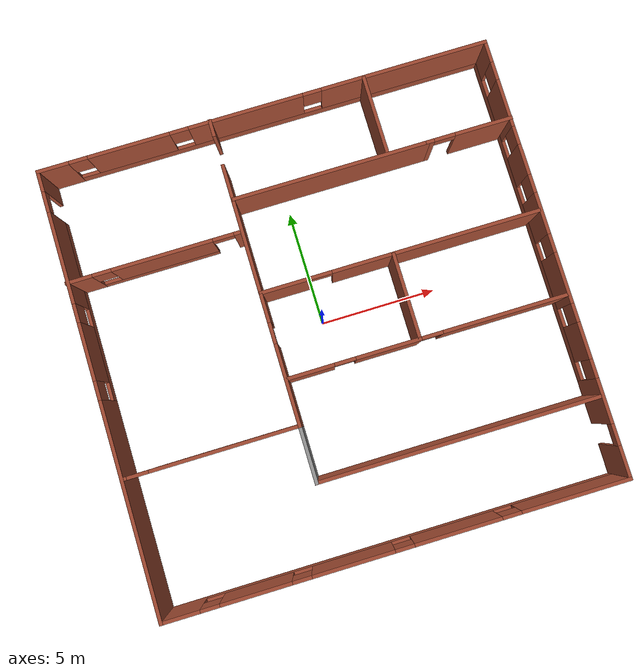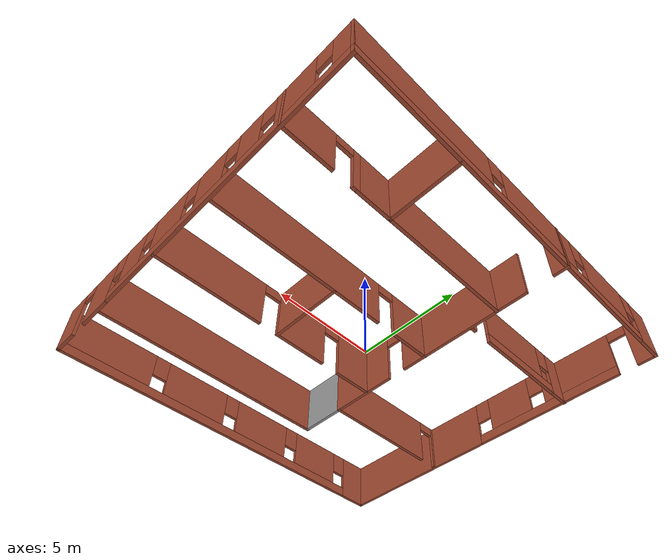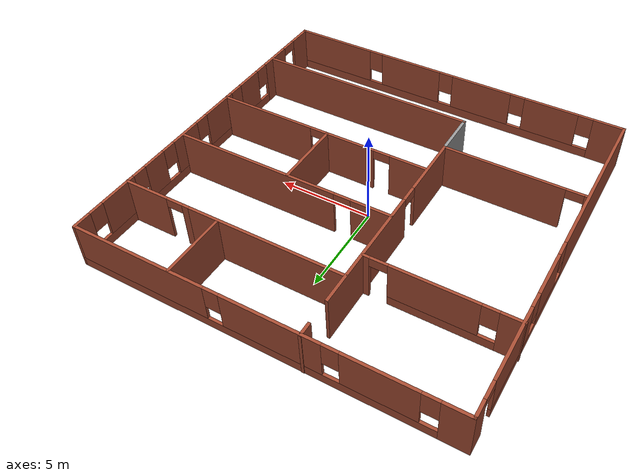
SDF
<?xml version='1.0'?>
<sdf version='1.7'>
  <model name='Robo_house'>
    <pose>0.166 -0.2695 0 0 -0 0</pose>
    <link name='Wall_15'>
      <pose>0.017 -9.4375 0 0 -0 0</pose>
      <visual name='Wall_15_Visual_0'>
        <pose>-8.91507 0 1.25 0 -0 0</pose>
        <geometry>
          <box>
            <size>1.66987 0.15 2.5</size>
          </box>
        </geometry>
        <material>
          <script>
            <uri>file://media/materials/scripts/gazebo.material</uri>
            <name>Gazebo/Bricks</name>
          </script>
          <ambient>1 1 1 1</ambient>
        </material>
        <meta>
          <layer>0</layer>
        </meta>
      </visual>
      <collision name='Wall_15_Collision_0'>
        <geometry>
          <box>
            <size>1.66987 0.15 2.5</size>
          </box>
        </geometry>
        <pose>-8.91507 0 1.25 0 -0 0</pose>
      </collision>
      <visual name='Wall_15_Visual_1'>
        <pose>0.834934 0 0.25 0 -0 0</pose>
        <geometry>
          <box>
            <size>17.8301 0.15 0.5</size>
          </box>
        </geometry>
        <material>
          <script>
            <uri>file://media/materials/scripts/gazebo.material</uri>
            <name>Gazebo/Bricks</name>
          </script>
          <ambient>1 1 1 1</ambient>
        </material>
        <meta>
          <layer>0</layer>
        </meta>
      </visual>
      <collision name='Wall_15_Collision_1'>
        <geometry>
          <box>
            <size>17.8301 0.15 0.5</size>
          </box>
        </geometry>
        <pose>0.834934 0 0.25 0 -0 0</pose>
      </collision>
      <visual name='Wall_15_Visual_2'>
        <pose>-5.79807 0 1.5 0 -0 0</pose>
        <geometry>
          <box>
            <size>2.96413 0.15 2</size>
          </box>
        </geometry>
        <material>
          <script>
            <uri>file://media/materials/scripts/gazebo.material</uri>
            <name>Gazebo/Bricks</name>
          </script>
          <ambient>1 1 1 1</ambient>
        </material>
        <meta>
          <layer>0</layer>
        </meta>
      </visual>
      <collision name='Wall_15_Collision_2'>
        <geometry>
          <box>
            <size>2.96413 0.15 2</size>
          </box>
        </geometry>
        <pose>-5.79807 0 1.5 0 -0 0</pose>
      </collision>
      <visual name='Wall_15_Visual_3'>
        <pose>-1.80528 0 1.5 0 -0 0</pose>
        <geometry>
          <box>
            <size>3.42145 0.15 2</size>
          </box>
        </geometry>
        <material>
          <script>
            <uri>file://media/materials/scripts/gazebo.material</uri>
            <name>Gazebo/Bricks</name>
          </script>
          <ambient>1 1 1 1</ambient>
        </material>
        <meta>
          <layer>0</layer>
        </meta>
      </visual>
      <collision name='Wall_15_Collision_3'>
        <geometry>
          <box>
            <size>3.42145 0.15 2</size>
          </box>
        </geometry>
        <pose>-1.80528 0 1.5 0 -0 0</pose>
      </collision>
      <visual name='Wall_15_Visual_4'>
        <pose>2.52171 0 1.5 0 -0 0</pose>
        <geometry>
          <box>
            <size>3.63252 0.15 2</size>
          </box>
        </geometry>
        <material>
          <script>
            <uri>file://media/materials/scripts/gazebo.material</uri>
            <name>Gazebo/Bricks</name>
          </script>
          <ambient>1 1 1 1</ambient>
        </material>
        <meta>
          <layer>0</layer>
        </meta>
      </visual>
      <collision name='Wall_15_Collision_4'>
        <geometry>
          <box>
            <size>3.63252 0.15 2</size>
          </box>
        </geometry>
        <pose>2.52171 0 1.5 0 -0 0</pose>
      </collision>
      <visual name='Wall_15_Visual_5'>
        <pose>7.44398 0 1.5 0 -0 0</pose>
        <geometry>
          <box>
            <size>4.61203 0.15 2</size>
          </box>
        </geometry>
        <material>
          <script>
            <uri>file://media/materials/scripts/gazebo.material</uri>
            <name>Gazebo/Bricks</name>
          </script>
          <ambient>1 1 1 1</ambient>
        </material>
        <meta>
          <layer>0</layer>
        </meta>
      </visual>
      <collision name='Wall_15_Collision_5'>
        <geometry>
          <box>
            <size>4.61203 0.15 2</size>
          </box>
        </geometry>
        <pose>7.44398 0 1.5 0 -0 0</pose>
      </collision>
      <visual name='Wall_15_Visual_6'>
        <pose>-7.68013 0 1.9 0 -0 0</pose>
        <geometry>
          <box>
            <size>0.8 0.15 1.2</size>
          </box>
        </geometry>
        <material>
          <script>
            <uri>file://media/materials/scripts/gazebo.material</uri>
            <name>Gazebo/Bricks</name>
          </script>
          <ambient>1 1 1 1</ambient>
        </material>
        <meta>
          <layer>0</layer>
        </meta>
      </visual>
      <collision name='Wall_15_Collision_6'>
        <geometry>
          <box>
            <size>0.8 0.15 1.2</size>
          </box>
        </geometry>
        <pose>-7.68013 0 1.9 0 -0 0</pose>
      </collision>
      <visual name='Wall_15_Visual_7'>
        <pose>-3.91601 0 1.9 0 -0 0</pose>
        <geometry>
          <box>
            <size>0.8 0.15 1.2</size>
          </box>
        </geometry>
        <material>
          <script>
            <uri>file://media/materials/scripts/gazebo.material</uri>
            <name>Gazebo/Bricks</name>
          </script>
          <ambient>1 1 1 1</ambient>
        </material>
        <meta>
          <layer>0</layer>
        </meta>
      </visual>
      <collision name='Wall_15_Collision_7'>
        <geometry>
          <box>
            <size>0.8 0.15 1.2</size>
          </box>
        </geometry>
        <pose>-3.91601 0 1.9 0 -0 0</pose>
      </collision>
      <visual name='Wall_15_Visual_8'>
        <pose>0.305447 0 1.9 0 -0 0</pose>
        <geometry>
          <box>
            <size>0.8 0.15 1.2</size>
          </box>
        </geometry>
        <material>
          <script>
            <uri>file://media/materials/scripts/gazebo.material</uri>
            <name>Gazebo/Bricks</name>
          </script>
          <ambient>1 1 1 1</ambient>
        </material>
        <meta>
          <layer>0</layer>
        </meta>
      </visual>
      <collision name='Wall_15_Collision_8'>
        <geometry>
          <box>
            <size>0.8 0.15 1.2</size>
          </box>
        </geometry>
        <pose>0.305447 0 1.9 0 -0 0</pose>
      </collision>
      <visual name='Wall_15_Visual_9'>
        <pose>4.73797 0 1.9 0 -0 0</pose>
        <geometry>
          <box>
            <size>0.8 0.15 1.2</size>
          </box>
        </geometry>
        <material>
          <script>
            <uri>file://media/materials/scripts/gazebo.material</uri>
            <name>Gazebo/Bricks</name>
          </script>
          <ambient>1 1 1 1</ambient>
        </material>
        <meta>
          <layer>0</layer>
        </meta>
      </visual>
      <collision name='Wall_15_Collision_9'>
        <geometry>
          <box>
            <size>0.8 0.15 1.2</size>
          </box>
        </geometry>
        <pose>4.73797 0 1.9 0 -0 0</pose>
      </collision>
    </link>
    <link name='Wall_16'>
      <pose>9.692 -0.0125 0 0 -0 1.5708</pose>
      <visual name='Wall_16_Visual_0'>
        <pose>-8.77922 0 1.25 0 -0 0</pose>
        <geometry>
          <box>
            <size>1.44155 0.15 2.5</size>
          </box>
        </geometry>
        <material>
          <script>
            <uri>file://media/materials/scripts/gazebo.material</uri>
            <name>Gazebo/Bricks</name>
          </script>
          <ambient>1 1 1 1</ambient>
        </material>
        <meta>
          <layer>0</layer>
        </meta>
      </visual>
      <collision name='Wall_16_Collision_0'>
        <geometry>
          <box>
            <size>1.44155 0.15 2.5</size>
          </box>
        </geometry>
        <pose>-8.77922 0 1.25 0 -0 0</pose>
      </collision>
      <visual name='Wall_16_Visual_1'>
        <pose>-6.20712 0 1.25 0 -0 0</pose>
        <geometry>
          <box>
            <size>1.90264 0.15 2.5</size>
          </box>
        </geometry>
        <material>
          <script>
            <uri>file://media/materials/scripts/gazebo.material</uri>
            <name>Gazebo/Bricks</name>
          </script>
          <ambient>1 1 1 1</ambient>
        </material>
        <meta>
          <layer>0</layer>
        </meta>
      </visual>
      <collision name='Wall_16_Collision_1'>
        <geometry>
          <box>
            <size>1.90264 0.15 2.5</size>
          </box>
        </geometry>
        <pose>-6.20712 0 1.25 0 -0 0</pose>
      </collision>
      <visual name='Wall_16_Visual_2'>
        <pose>2.1221 0 0.25 0 -0 0</pose>
        <geometry>
          <box>
            <size>14.7558 0.15 0.5</size>
          </box>
        </geometry>
        <material>
          <script>
            <uri>file://media/materials/scripts/gazebo.material</uri>
            <name>Gazebo/Bricks</name>
          </script>
          <ambient>1 1 1 1</ambient>
        </material>
        <meta>
          <layer>0</layer>
        </meta>
      </visual>
      <collision name='Wall_16_Collision_2'>
        <geometry>
          <box>
            <size>14.7558 0.15 0.5</size>
          </box>
        </geometry>
        <pose>2.1221 0 0.25 0 -0 0</pose>
      </collision>
      <visual name='Wall_16_Visual_3'>
        <pose>-3.67427 0 1.5 0 -0 0</pose>
        <geometry>
          <box>
            <size>1.56306 0.15 2</size>
          </box>
        </geometry>
        <material>
          <script>
            <uri>file://media/materials/scripts/gazebo.material</uri>
            <name>Gazebo/Bricks</name>
          </script>
          <ambient>1 1 1 1</ambient>
        </material>
        <meta>
          <layer>0</layer>
        </meta>
      </visual>
      <collision name='Wall_16_Collision_3'>
        <geometry>
          <box>
            <size>1.56306 0.15 2</size>
          </box>
        </geometry>
        <pose>-3.67427 0 1.5 0 -0 0</pose>
      </collision>
      <visual name='Wall_16_Visual_4'>
        <pose>-1.00069 0 1.5 0 -0 0</pose>
        <geometry>
          <box>
            <size>2.18411 0.15 2</size>
          </box>
        </geometry>
        <material>
          <script>
            <uri>file://media/materials/scripts/gazebo.material</uri>
            <name>Gazebo/Bricks</name>
          </script>
          <ambient>1 1 1 1</ambient>
        </material>
        <meta>
          <layer>0</layer>
        </meta>
      </visual>
      <collision name='Wall_16_Collision_4'>
        <geometry>
          <box>
            <size>2.18411 0.15 2</size>
          </box>
        </geometry>
        <pose>-1.00069 0 1.5 0 -0 0</pose>
      </collision>
      <visual name='Wall_16_Visual_5'>
        <pose>1.79027 0 1.5 0 -0 0</pose>
        <geometry>
          <box>
            <size>1.79781 0.15 2</size>
          </box>
        </geometry>
        <material>
          <script>
            <uri>file://media/materials/scripts/gazebo.material</uri>
            <name>Gazebo/Bricks</name>
          </script>
          <ambient>1 1 1 1</ambient>
        </material>
        <meta>
          <layer>0</layer>
        </meta>
      </visual>
      <collision name='Wall_16_Collision_5'>
        <geometry>
          <box>
            <size>1.79781 0.15 2</size>
          </box>
        </geometry>
        <pose>1.79027 0 1.5 0 -0 0</pose>
      </collision>
      <visual name='Wall_16_Visual_6'>
        <pose>4.15524 0 1.5 0 -0 0</pose>
        <geometry>
          <box>
            <size>1.33214 0.15 2</size>
          </box>
        </geometry>
        <material>
          <script>
            <uri>file://media/materials/scripts/gazebo.material</uri>
            <name>Gazebo/Bricks</name>
          </script>
          <ambient>1 1 1 1</ambient>
        </material>
        <meta>
          <layer>0</layer>
        </meta>
      </visual>
      <collision name='Wall_16_Collision_6'>
        <geometry>
          <box>
            <size>1.33214 0.15 2</size>
          </box>
        </geometry>
        <pose>4.15524 0 1.5 0 -0 0</pose>
      </collision>
      <visual name='Wall_16_Visual_7'>
        <pose>6.66355 0 1.5 0 -0 0</pose>
        <geometry>
          <box>
            <size>2.08446 0.15 2</size>
          </box>
        </geometry>
        <material>
          <script>
            <uri>file://media/materials/scripts/gazebo.material</uri>
            <name>Gazebo/Bricks</name>
          </script>
          <ambient>1 1 1 1</ambient>
        </material>
        <meta>
          <layer>0</layer>
        </meta>
      </visual>
      <collision name='Wall_16_Collision_7'>
        <geometry>
          <box>
            <size>2.08446 0.15 2</size>
          </box>
        </geometry>
        <pose>6.66355 0 1.5 0 -0 0</pose>
      </collision>
      <visual name='Wall_16_Visual_8'>
        <pose>9.00289 0 1.5 0 -0 0</pose>
        <geometry>
          <box>
            <size>0.99422 0.15 2</size>
          </box>
        </geometry>
        <material>
          <script>
            <uri>file://media/materials/scripts/gazebo.material</uri>
            <name>Gazebo/Bricks</name>
          </script>
          <ambient>1 1 1 1</ambient>
        </material>
        <meta>
          <layer>0</layer>
        </meta>
      </visual>
      <collision name='Wall_16_Collision_8'>
        <geometry>
          <box>
            <size>0.99422 0.15 2</size>
          </box>
        </geometry>
        <pose>9.00289 0 1.5 0 -0 0</pose>
      </collision>
      <visual name='Wall_16_Visual_9'>
        <pose>-4.8558 0 1.9 0 -0 0</pose>
        <geometry>
          <box>
            <size>0.8 0.15 1.2</size>
          </box>
        </geometry>
        <material>
          <script>
            <uri>file://media/materials/scripts/gazebo.material</uri>
            <name>Gazebo/Bricks</name>
          </script>
          <ambient>1 1 1 1</ambient>
        </material>
        <meta>
          <layer>0</layer>
        </meta>
      </visual>
      <collision name='Wall_16_Collision_9'>
        <geometry>
          <box>
            <size>0.8 0.15 1.2</size>
          </box>
        </geometry>
        <pose>-4.8558 0 1.9 0 -0 0</pose>
      </collision>
      <visual name='Wall_16_Visual_10'>
        <pose>-2.49274 0 1.9 0 -0 0</pose>
        <geometry>
          <box>
            <size>0.8 0.15 1.2</size>
          </box>
        </geometry>
        <material>
          <script>
            <uri>file://media/materials/scripts/gazebo.material</uri>
            <name>Gazebo/Bricks</name>
          </script>
          <ambient>1 1 1 1</ambient>
        </material>
        <meta>
          <layer>0</layer>
        </meta>
      </visual>
      <collision name='Wall_16_Collision_10'>
        <geometry>
          <box>
            <size>0.8 0.15 1.2</size>
          </box>
        </geometry>
        <pose>-2.49274 0 1.9 0 -0 0</pose>
      </collision>
      <visual name='Wall_16_Visual_11'>
        <pose>0.491371 0 1.9 0 -0 0</pose>
        <geometry>
          <box>
            <size>0.8 0.15 1.2</size>
          </box>
        </geometry>
        <material>
          <script>
            <uri>file://media/materials/scripts/gazebo.material</uri>
            <name>Gazebo/Bricks</name>
          </script>
          <ambient>1 1 1 1</ambient>
        </material>
        <meta>
          <layer>0</layer>
        </meta>
      </visual>
      <collision name='Wall_16_Collision_11'>
        <geometry>
          <box>
            <size>0.8 0.15 1.2</size>
          </box>
        </geometry>
        <pose>0.491371 0 1.9 0 -0 0</pose>
      </collision>
      <visual name='Wall_16_Visual_12'>
        <pose>3.08918 0 1.9 0 -0 0</pose>
        <geometry>
          <box>
            <size>0.8 0.15 1.2</size>
          </box>
        </geometry>
        <material>
          <script>
            <uri>file://media/materials/scripts/gazebo.material</uri>
            <name>Gazebo/Bricks</name>
          </script>
          <ambient>1 1 1 1</ambient>
        </material>
        <meta>
          <layer>0</layer>
        </meta>
      </visual>
      <collision name='Wall_16_Collision_12'>
        <geometry>
          <box>
            <size>0.8 0.15 1.2</size>
          </box>
        </geometry>
        <pose>3.08918 0 1.9 0 -0 0</pose>
      </collision>
      <visual name='Wall_16_Visual_13'>
        <pose>5.22131 0 1.9 0 -0 0</pose>
        <geometry>
          <box>
            <size>0.8 0.15 1.2</size>
          </box>
        </geometry>
        <material>
          <script>
            <uri>file://media/materials/scripts/gazebo.material</uri>
            <name>Gazebo/Bricks</name>
          </script>
          <ambient>1 1 1 1</ambient>
        </material>
        <meta>
          <layer>0</layer>
        </meta>
      </visual>
      <collision name='Wall_16_Collision_13'>
        <geometry>
          <box>
            <size>0.8 0.15 1.2</size>
          </box>
        </geometry>
        <pose>5.22131 0 1.9 0 -0 0</pose>
      </collision>
      <visual name='Wall_16_Visual_14'>
        <pose>8.10578 0 1.9 0 -0 0</pose>
        <geometry>
          <box>
            <size>0.8 0.15 1.2</size>
          </box>
        </geometry>
        <material>
          <script>
            <uri>file://media/materials/scripts/gazebo.material</uri>
            <name>Gazebo/Bricks</name>
          </script>
          <ambient>1 1 1 1</ambient>
        </material>
        <meta>
          <layer>0</layer>
        </meta>
      </visual>
      <collision name='Wall_16_Collision_14'>
        <geometry>
          <box>
            <size>0.8 0.15 1.2</size>
          </box>
        </geometry>
        <pose>8.10578 0 1.9 0 -0 0</pose>
      </collision>
      <visual name='Wall_16_Visual_15'>
        <pose>-7.60845 0 2.25 0 -0 0</pose>
        <geometry>
          <box>
            <size>0.9 0.15 0.5</size>
          </box>
        </geometry>
        <material>
          <script>
            <uri>file://media/materials/scripts/gazebo.material</uri>
            <name>Gazebo/Bricks</name>
          </script>
          <ambient>1 1 1 1</ambient>
        </material>
        <meta>
          <layer>0</layer>
        </meta>
      </visual>
      <collision name='Wall_16_Collision_15'>
        <geometry>
          <box>
            <size>0.9 0.15 0.5</size>
          </box>
        </geometry>
        <pose>-7.60845 0 2.25 0 -0 0</pose>
      </collision>
    </link>
    <link name='Wall_20'>
      <pose>-9.658 -0.0125 0 0 -0 1.5708</pose>
      <visual name='Wall_20_Visual_0'>
        <pose>-4.92846 0 1.25 0 -0 0</pose>
        <geometry>
          <box>
            <size>9.14308 0.15 2.5</size>
          </box>
        </geometry>
        <material>
          <script>
            <uri>file://media/materials/scripts/gazebo.material</uri>
            <name>Gazebo/Bricks</name>
          </script>
          <ambient>1 1 1 1</ambient>
        </material>
        <meta>
          <layer>0</layer>
        </meta>
      </visual>
      <collision name='Wall_20_Collision_0'>
        <geometry>
          <box>
            <size>9.14308 0.15 2.5</size>
          </box>
        </geometry>
        <pose>-4.92846 0 1.25 0 -0 0</pose>
      </collision>
      <visual name='Wall_20_Visual_1'>
        <pose>9.02608 0 1.25 0 -0 0</pose>
        <geometry>
          <box>
            <size>0.947833 0.15 2.5</size>
          </box>
        </geometry>
        <material>
          <script>
            <uri>file://media/materials/scripts/gazebo.material</uri>
            <name>Gazebo/Bricks</name>
          </script>
          <ambient>1 1 1 1</ambient>
        </material>
        <meta>
          <layer>0</layer>
        </meta>
      </visual>
      <collision name='Wall_20_Collision_1'>
        <geometry>
          <box>
            <size>0.947833 0.15 2.5</size>
          </box>
        </geometry>
        <pose>9.02608 0 1.25 0 -0 0</pose>
      </collision>
      <visual name='Wall_20_Visual_2'>
        <pose>3.64762 0 0.25 0 -0 0</pose>
        <geometry>
          <box>
            <size>8.00909 0.15 0.5</size>
          </box>
        </geometry>
        <material>
          <script>
            <uri>file://media/materials/scripts/gazebo.material</uri>
            <name>Gazebo/Bricks</name>
          </script>
          <ambient>1 1 1 1</ambient>
        </material>
        <meta>
          <layer>0</layer>
        </meta>
      </visual>
      <collision name='Wall_20_Collision_2'>
        <geometry>
          <box>
            <size>8.00909 0.15 0.5</size>
          </box>
        </geometry>
        <pose>3.64762 0 0.25 0 -0 0</pose>
      </collision>
      <visual name='Wall_20_Visual_3'>
        <pose>1.67438 0 1.5 0 -0 0</pose>
        <geometry>
          <box>
            <size>2.46259 0.15 2</size>
          </box>
        </geometry>
        <material>
          <script>
            <uri>file://media/materials/scripts/gazebo.material</uri>
            <name>Gazebo/Bricks</name>
          </script>
          <ambient>1 1 1 1</ambient>
        </material>
        <meta>
          <layer>0</layer>
        </meta>
      </visual>
      <collision name='Wall_20_Collision_3'>
        <geometry>
          <box>
            <size>2.46259 0.15 2</size>
          </box>
        </geometry>
        <pose>1.67438 0 1.5 0 -0 0</pose>
      </collision>
      <visual name='Wall_20_Visual_4'>
        <pose>5.67892 0 1.5 0 -0 0</pose>
        <geometry>
          <box>
            <size>3.9465 0.15 2</size>
          </box>
        </geometry>
        <material>
          <script>
            <uri>file://media/materials/scripts/gazebo.material</uri>
            <name>Gazebo/Bricks</name>
          </script>
          <ambient>1 1 1 1</ambient>
        </material>
        <meta>
          <layer>0</layer>
        </meta>
      </visual>
      <collision name='Wall_20_Collision_4'>
        <geometry>
          <box>
            <size>3.9465 0.15 2</size>
          </box>
        </geometry>
        <pose>5.67892 0 1.5 0 -0 0</pose>
      </collision>
      <visual name='Wall_20_Visual_5'>
        <pose>0.04308 0 1.9 0 -0 0</pose>
        <geometry>
          <box>
            <size>0.8 0.15 1.2</size>
          </box>
        </geometry>
        <material>
          <script>
            <uri>file://media/materials/scripts/gazebo.material</uri>
            <name>Gazebo/Bricks</name>
          </script>
          <ambient>1 1 1 1</ambient>
        </material>
        <meta>
          <layer>0</layer>
        </meta>
      </visual>
      <collision name='Wall_20_Collision_5'>
        <geometry>
          <box>
            <size>0.8 0.15 1.2</size>
          </box>
        </geometry>
        <pose>0.04308 0 1.9 0 -0 0</pose>
      </collision>
      <visual name='Wall_20_Visual_6'>
        <pose>3.30567 0 1.9 0 -0 0</pose>
        <geometry>
          <box>
            <size>0.8 0.15 1.2</size>
          </box>
        </geometry>
        <material>
          <script>
            <uri>file://media/materials/scripts/gazebo.material</uri>
            <name>Gazebo/Bricks</name>
          </script>
          <ambient>1 1 1 1</ambient>
        </material>
        <meta>
          <layer>0</layer>
        </meta>
      </visual>
      <collision name='Wall_20_Collision_6'>
        <geometry>
          <box>
            <size>0.8 0.15 1.2</size>
          </box>
        </geometry>
        <pose>3.30567 0 1.9 0 -0 0</pose>
      </collision>
      <visual name='Wall_20_Visual_7'>
        <pose>8.10217 0 2.25 0 -0 0</pose>
        <geometry>
          <box>
            <size>0.9 0.15 0.5</size>
          </box>
        </geometry>
        <material>
          <script>
            <uri>file://media/materials/scripts/gazebo.material</uri>
            <name>Gazebo/Bricks</name>
          </script>
          <ambient>1 1 1 1</ambient>
        </material>
        <meta>
          <layer>0</layer>
        </meta>
      </visual>
      <collision name='Wall_20_Collision_7'>
        <geometry>
          <box>
            <size>0.9 0.15 0.5</size>
          </box>
        </geometry>
        <pose>8.10217 0 2.25 0 -0 0</pose>
      </collision>
    </link>
    <link name='Wall_21'>
      <pose>0.017 9.4125 0 0 -0 0</pose>
      <visual name='Wall_21_Visual_0'>
        <pose>-9.05411 0 1.25 0 -0 0</pose>
        <geometry>
          <box>
            <size>1.39177 0.15 2.5</size>
          </box>
        </geometry>
        <material>
          <script>
            <uri>file://media/materials/scripts/gazebo.material</uri>
            <name>Gazebo/Bricks</name>
          </script>
          <ambient>1 1 1 1</ambient>
        </material>
        <meta>
          <layer>0</layer>
        </meta>
      </visual>
      <collision name='Wall_21_Collision_0'>
        <geometry>
          <box>
            <size>1.39177 0.15 2.5</size>
          </box>
        </geometry>
        <pose>-9.05411 0 1.25 0 -0 0</pose>
      </collision>
      <visual name='Wall_21_Visual_1'>
        <pose>0.695886 0 0.25 0 -0 0</pose>
        <geometry>
          <box>
            <size>18.1082 0.15 0.5</size>
          </box>
        </geometry>
        <material>
          <script>
            <uri>file://media/materials/scripts/gazebo.material</uri>
            <name>Gazebo/Bricks</name>
          </script>
          <ambient>1 1 1 1</ambient>
        </material>
        <meta>
          <layer>0</layer>
        </meta>
      </visual>
      <collision name='Wall_21_Collision_1'>
        <geometry>
          <box>
            <size>18.1082 0.15 0.5</size>
          </box>
        </geometry>
        <pose>0.695886 0 0.25 0 -0 0</pose>
      </collision>
      <visual name='Wall_21_Visual_2'>
        <pose>-5.79711 0 1.5 0 -0 0</pose>
        <geometry>
          <box>
            <size>3.52224 0.15 2</size>
          </box>
        </geometry>
        <material>
          <script>
            <uri>file://media/materials/scripts/gazebo.material</uri>
            <name>Gazebo/Bricks</name>
          </script>
          <ambient>1 1 1 1</ambient>
        </material>
        <meta>
          <layer>0</layer>
        </meta>
      </visual>
      <collision name='Wall_21_Collision_2'>
        <geometry>
          <box>
            <size>3.52224 0.15 2</size>
          </box>
        </geometry>
        <pose>-5.79711 0 1.5 0 -0 0</pose>
      </collision>
      <visual name='Wall_21_Visual_3'>
        <pose>-0.763639 0 1.5 0 -0 0</pose>
        <geometry>
          <box>
            <size>4.94469 0.15 2</size>
          </box>
        </geometry>
        <material>
          <script>
            <uri>file://media/materials/scripts/gazebo.material</uri>
            <name>Gazebo/Bricks</name>
          </script>
          <ambient>1 1 1 1</ambient>
        </material>
        <meta>
          <layer>0</layer>
        </meta>
      </visual>
      <collision name='Wall_21_Collision_3'>
        <geometry>
          <box>
            <size>4.94469 0.15 2</size>
          </box>
        </geometry>
        <pose>-0.763639 0 1.5 0 -0 0</pose>
      </collision>
      <visual name='Wall_21_Visual_4'>
        <pose>6.12935 0 1.5 0 -0 0</pose>
        <geometry>
          <box>
            <size>7.24129 0.15 2</size>
          </box>
        </geometry>
        <material>
          <script>
            <uri>file://media/materials/scripts/gazebo.material</uri>
            <name>Gazebo/Bricks</name>
          </script>
          <ambient>1 1 1 1</ambient>
        </material>
        <meta>
          <layer>0</layer>
        </meta>
      </visual>
      <collision name='Wall_21_Collision_4'>
        <geometry>
          <box>
            <size>7.24129 0.15 2</size>
          </box>
        </geometry>
        <pose>6.12935 0 1.5 0 -0 0</pose>
      </collision>
      <visual name='Wall_21_Visual_5'>
        <pose>-7.95823 0 1.9 0 -0 0</pose>
        <geometry>
          <box>
            <size>0.8 0.15 1.2</size>
          </box>
        </geometry>
        <material>
          <script>
            <uri>file://media/materials/scripts/gazebo.material</uri>
            <name>Gazebo/Bricks</name>
          </script>
          <ambient>1 1 1 1</ambient>
        </material>
        <meta>
          <layer>0</layer>
        </meta>
      </visual>
      <collision name='Wall_21_Collision_5'>
        <geometry>
          <box>
            <size>0.8 0.15 1.2</size>
          </box>
        </geometry>
        <pose>-7.95823 0 1.9 0 -0 0</pose>
      </collision>
      <visual name='Wall_21_Visual_6'>
        <pose>-3.63598 0 1.9 0 -0 0</pose>
        <geometry>
          <box>
            <size>0.8 0.15 1.2</size>
          </box>
        </geometry>
        <material>
          <script>
            <uri>file://media/materials/scripts/gazebo.material</uri>
            <name>Gazebo/Bricks</name>
          </script>
          <ambient>1 1 1 1</ambient>
        </material>
        <meta>
          <layer>0</layer>
        </meta>
      </visual>
      <collision name='Wall_21_Collision_6'>
        <geometry>
          <box>
            <size>0.8 0.15 1.2</size>
          </box>
        </geometry>
        <pose>-3.63598 0 1.9 0 -0 0</pose>
      </collision>
      <visual name='Wall_21_Visual_7'>
        <pose>2.10871 0 1.9 0 -0 0</pose>
        <geometry>
          <box>
            <size>0.8 0.15 1.2</size>
          </box>
        </geometry>
        <material>
          <script>
            <uri>file://media/materials/scripts/gazebo.material</uri>
            <name>Gazebo/Bricks</name>
          </script>
          <ambient>1 1 1 1</ambient>
        </material>
        <meta>
          <layer>0</layer>
        </meta>
      </visual>
      <collision name='Wall_21_Collision_7'>
        <geometry>
          <box>
            <size>0.8 0.15 1.2</size>
          </box>
        </geometry>
        <pose>2.10871 0 1.9 0 -0 0</pose>
      </collision>
    </link>
    <link name='Wall_23'>
      <pose>-5.961 -3.6535 0 0 -0 0</pose>
      <visual name='Wall_23_Visual_0'>
        <pose>-3.62205 0 1.25 0 -0 0</pose>
        <geometry>
          <box>
            <size>0.255896 0.15 2.5</size>
          </box>
        </geometry>
        <material>
          <script>
            <uri>file://media/materials/scripts/gazebo.material</uri>
            <name>Gazebo/Bricks</name>
          </script>
          <ambient>1 1 1 1</ambient>
        </material>
        <meta>
          <layer>0</layer>
        </meta>
      </visual>
      <collision name='Wall_23_Collision_0'>
        <geometry>
          <box>
            <size>0.255896 0.15 2.5</size>
          </box>
        </geometry>
        <pose>-3.62205 0 1.25 0 -0 0</pose>
      </collision>
      <visual name='Wall_23_Visual_1'>
        <pose>0.577948 0 1.25 0 -0 0</pose>
        <geometry>
          <box>
            <size>6.3441 0.15 2.5</size>
          </box>
        </geometry>
        <material>
          <script>
            <uri>file://media/materials/scripts/gazebo.material</uri>
            <name>Gazebo/Bricks</name>
          </script>
          <ambient>1 1 1 1</ambient>
        </material>
        <meta>
          <layer>0</layer>
        </meta>
      </visual>
      <collision name='Wall_23_Collision_1'>
        <geometry>
          <box>
            <size>6.3441 0.15 2.5</size>
          </box>
        </geometry>
        <pose>0.577948 0 1.25 0 -0 0</pose>
      </collision>
      <visual name='Wall_23_Visual_2'>
        <pose>-3.0441 0 2.25 0 -0 0</pose>
        <geometry>
          <box>
            <size>0.9 0.15 0.5</size>
          </box>
        </geometry>
        <material>
          <script>
            <uri>file://media/materials/scripts/gazebo.material</uri>
            <name>Gazebo/Bricks</name>
          </script>
          <ambient>1 1 1 1</ambient>
        </material>
        <meta>
          <layer>0</layer>
        </meta>
      </visual>
      <collision name='Wall_23_Collision_2'>
        <geometry>
          <box>
            <size>0.9 0.15 0.5</size>
          </box>
        </geometry>
        <pose>-3.0441 0 2.25 0 -0 0</pose>
      </collision>
    </link>
    <link name='Wall_24'>
      <collision name='Wall_24_Collision'>
        <geometry>
          <box>
            <size>2.5 0.15 2.5</size>
          </box>
        </geometry>
        <pose>0 0 1.25 0 -0 0</pose>
      </collision>
      <visual name='Wall_24_Visual'>
        <pose>0 0 1.25 0 -0 0</pose>
        <geometry>
          <box>
            <size>2.5 0.15 2.5</size>
          </box>
        </geometry>
        <material>
          <script>
            <uri>file://media/materials/scripts/gazebo.material</uri>
            <name>Gazebo/Grey</name>
          </script>
          <ambient>1 1 1 1</ambient>
        </material>
        <meta>
          <layer>0</layer>
        </meta>
      </visual>
      <pose>-2.286 -4.8285 0 0 -0 -1.5708</pose>
    </link>
    <link name='Wall_25'>
      <collision name='Wall_25_Collision'>
        <geometry>
          <box>
            <size>12 0.15 2.5</size>
          </box>
        </geometry>
        <pose>0 0 1.25 0 -0 0</pose>
      </collision>
      <visual name='Wall_25_Visual'>
        <pose>0 0 1.25 0 -0 0</pose>
        <geometry>
          <box>
            <size>12 0.15 2.5</size>
          </box>
        </geometry>
        <material>
          <script>
            <uri>file://media/materials/scripts/gazebo.material</uri>
            <name>Gazebo/Bricks</name>
          </script>
          <ambient>1 1 1 1</ambient>
        </material>
        <meta>
          <layer>0</layer>
        </meta>
      </visual>
      <pose>3.639 -6.0035 0 0 -0 0</pose>
    </link>
    <link name='Wall_34'>
      <pose>7.902 5.9825 0 0 -0 0</pose>
      <visual name='Wall_34_Visual_0'>
        <pose>-1.6939 0 1.25 0 -0 0</pose>
        <geometry>
          <box>
            <size>0.362205 0.15 2.5</size>
          </box>
        </geometry>
        <material>
          <script>
            <uri>file://media/materials/scripts/gazebo.material</uri>
            <name>Gazebo/Bricks</name>
          </script>
          <ambient>1 1 1 1</ambient>
        </material>
        <meta>
          <layer>0</layer>
        </meta>
      </visual>
      <collision name='Wall_34_Collision_0'>
        <geometry>
          <box>
            <size>0.362205 0.15 2.5</size>
          </box>
        </geometry>
        <pose>-1.6939 0 1.25 0 -0 0</pose>
      </collision>
      <visual name='Wall_34_Visual_1'>
        <pose>0.631102 0 1.25 0 -0 0</pose>
        <geometry>
          <box>
            <size>2.4878 0.15 2.5</size>
          </box>
        </geometry>
        <material>
          <script>
            <uri>file://media/materials/scripts/gazebo.material</uri>
            <name>Gazebo/Bricks</name>
          </script>
          <ambient>1 1 1 1</ambient>
        </material>
        <meta>
          <layer>0</layer>
        </meta>
      </visual>
      <collision name='Wall_34_Collision_1'>
        <geometry>
          <box>
            <size>2.4878 0.15 2.5</size>
          </box>
        </geometry>
        <pose>0.631102 0 1.25 0 -0 0</pose>
      </collision>
      <visual name='Wall_34_Visual_2'>
        <pose>-1.06279 0 2.25 0 -0 0</pose>
        <geometry>
          <box>
            <size>0.9 0.15 0.5</size>
          </box>
        </geometry>
        <material>
          <script>
            <uri>file://media/materials/scripts/gazebo.material</uri>
            <name>Gazebo/Bricks</name>
          </script>
          <ambient>1 1 1 1</ambient>
        </material>
        <meta>
          <layer>0</layer>
        </meta>
      </visual>
      <collision name='Wall_34_Collision_2'>
        <geometry>
          <box>
            <size>0.9 0.15 0.5</size>
          </box>
        </geometry>
        <pose>-1.06279 0 2.25 0 -0 0</pose>
      </collision>
    </link>
    <link name='Wall_36'>
      <pose>-2.286 1.8965 0 0 -0 1.5708</pose>
      <visual name='Wall_36_Visual_0'>
        <pose>-3.87113 0 1.25 0 -0 0</pose>
        <geometry>
          <box>
            <size>3.50774 0.15 2.5</size>
          </box>
        </geometry>
        <material>
          <script>
            <uri>file://media/materials/scripts/gazebo.material</uri>
            <name>Gazebo/Bricks</name>
          </script>
          <ambient>1 1 1 1</ambient>
        </material>
        <meta>
          <layer>0</layer>
        </meta>
      </visual>
      <collision name='Wall_36_Collision_0'>
        <geometry>
          <box>
            <size>3.50774 0.15 2.5</size>
          </box>
        </geometry>
        <pose>-3.87113 0 1.25 0 -0 0</pose>
      </collision>
      <visual name='Wall_36_Visual_1'>
        <pose>2.20387 0 1.25 0 -0 0</pose>
        <geometry>
          <box>
            <size>6.84226 0.15 2.5</size>
          </box>
        </geometry>
        <material>
          <script>
            <uri>file://media/materials/scripts/gazebo.material</uri>
            <name>Gazebo/Bricks</name>
          </script>
          <ambient>1 1 1 1</ambient>
        </material>
        <meta>
          <layer>0</layer>
        </meta>
      </visual>
      <collision name='Wall_36_Collision_1'>
        <geometry>
          <box>
            <size>6.84226 0.15 2.5</size>
          </box>
        </geometry>
        <pose>2.20387 0 1.25 0 -0 0</pose>
      </collision>
      <visual name='Wall_36_Visual_2'>
        <pose>-1.66726 0 2.25 0 -0 0</pose>
        <geometry>
          <box>
            <size>0.9 0.15 0.5</size>
          </box>
        </geometry>
        <material>
          <script>
            <uri>file://media/materials/scripts/gazebo.material</uri>
            <name>Gazebo/Bricks</name>
          </script>
          <ambient>1 1 1 1</ambient>
        </material>
        <meta>
          <layer>0</layer>
        </meta>
      </visual>
      <collision name='Wall_36_Collision_2'>
        <geometry>
          <box>
            <size>0.9 0.15 0.5</size>
          </box>
        </geometry>
        <pose>-1.66726 0 2.25 0 -0 0</pose>
      </collision>
    </link>
    <link name='Wall_38'>
      <collision name='Wall_38_Collision'>
        <geometry>
          <box>
            <size>8.5 0.15 2.5</size>
          </box>
        </geometry>
        <pose>0 0 1.25 0 -0 0</pose>
      </collision>
      <visual name='Wall_38_Visual'>
        <pose>0 0 1.25 0 -0 0</pose>
        <geometry>
          <box>
            <size>8.5 0.15 2.5</size>
          </box>
        </geometry>
        <material>
          <script>
            <uri>file://media/materials/scripts/gazebo.material</uri>
            <name>Gazebo/Bricks</name>
          </script>
          <ambient>1 1 1 1</ambient>
        </material>
        <meta>
          <layer>0</layer>
        </meta>
      </visual>
      <pose>1.927 5.9825 0 0 -0 3.14159</pose>
    </link>
    <link name='Wall_44'>
      <collision name='Wall_44_Collision'>
        <geometry>
          <box>
            <size>0.75 0.15 2.5</size>
          </box>
        </geometry>
        <pose>0 0 1.25 0 -0 0</pose>
      </collision>
      <visual name='Wall_44_Visual'>
        <pose>0 0 1.25 0 -0 0</pose>
        <geometry>
          <box>
            <size>0.75 0.15 2.5</size>
          </box>
        </geometry>
        <material>
          <script>
            <uri>file://media/materials/scripts/gazebo.material</uri>
            <name>Gazebo/Bricks</name>
          </script>
          <ambient>1 1 1 1</ambient>
        </material>
        <meta>
          <layer>0</layer>
        </meta>
      </visual>
      <pose>-2.281 9.1375 0 0 -0 -1.5708</pose>
    </link>
    <link name='Wall_46'>
      <pose>3.659 1.9305 0 0 -0 0</pose>
      <visual name='Wall_46_Visual_0'>
        <pose>-4.90616 0 1.25 0 -0 0</pose>
        <geometry>
          <box>
            <size>2.18769 0.15 2.5</size>
          </box>
        </geometry>
        <material>
          <script>
            <uri>file://media/materials/scripts/gazebo.material</uri>
            <name>Gazebo/Bricks</name>
          </script>
          <ambient>1 1 1 1</ambient>
        </material>
        <meta>
          <layer>0</layer>
        </meta>
      </visual>
      <collision name='Wall_46_Collision_0'>
        <geometry>
          <box>
            <size>2.18769 0.15 2.5</size>
          </box>
        </geometry>
        <pose>-4.90616 0 1.25 0 -0 0</pose>
      </collision>
      <visual name='Wall_46_Visual_1'>
        <pose>1.54384 0 1.25 0 -0 0</pose>
        <geometry>
          <box>
            <size>8.91231 0.15 2.5</size>
          </box>
        </geometry>
        <material>
          <script>
            <uri>file://media/materials/scripts/gazebo.material</uri>
            <name>Gazebo/Bricks</name>
          </script>
          <ambient>1 1 1 1</ambient>
        </material>
        <meta>
          <layer>0</layer>
        </meta>
      </visual>
      <collision name='Wall_46_Collision_1'>
        <geometry>
          <box>
            <size>8.91231 0.15 2.5</size>
          </box>
        </geometry>
        <pose>1.54384 0 1.25 0 -0 0</pose>
      </collision>
      <visual name='Wall_46_Visual_2'>
        <pose>-3.36231 0 2.25 0 -0 0</pose>
        <geometry>
          <box>
            <size>0.9 0.15 0.5</size>
          </box>
        </geometry>
        <material>
          <script>
            <uri>file://media/materials/scripts/gazebo.material</uri>
            <name>Gazebo/Bricks</name>
          </script>
          <ambient>1 1 1 1</ambient>
        </material>
        <meta>
          <layer>0</layer>
        </meta>
      </visual>
      <collision name='Wall_46_Collision_2'>
        <geometry>
          <box>
            <size>0.9 0.15 0.5</size>
          </box>
        </geometry>
        <pose>-3.36231 0 2.25 0 -0 0</pose>
      </collision>
    </link>
    <link name='Wall_48'>
      <pose>3.74 -1.7145 0 0 -0 0</pose>
      <visual name='Wall_48_Visual_0'>
        <pose>-4.99272 0 1.25 0 -0 0</pose>
        <geometry>
          <box>
            <size>2.01456 0.15 2.5</size>
          </box>
        </geometry>
        <material>
          <script>
            <uri>file://media/materials/scripts/gazebo.material</uri>
            <name>Gazebo/Bricks</name>
          </script>
          <ambient>1 1 1 1</ambient>
        </material>
        <meta>
          <layer>0</layer>
        </meta>
      </visual>
      <collision name='Wall_48_Collision_0'>
        <geometry>
          <box>
            <size>2.01456 0.15 2.5</size>
          </box>
        </geometry>
        <pose>-4.99272 0 1.25 0 -0 0</pose>
      </collision>
      <visual name='Wall_48_Visual_1'>
        <pose>-1.69471 0 1.25 0 -0 0</pose>
        <geometry>
          <box>
            <size>2.78146 0.15 2.5</size>
          </box>
        </geometry>
        <material>
          <script>
            <uri>file://media/materials/scripts/gazebo.material</uri>
            <name>Gazebo/Bricks</name>
          </script>
          <ambient>1 1 1 1</ambient>
        </material>
        <meta>
          <layer>0</layer>
        </meta>
      </visual>
      <collision name='Wall_48_Collision_1'>
        <geometry>
          <box>
            <size>2.78146 0.15 2.5</size>
          </box>
        </geometry>
        <pose>-1.69471 0 1.25 0 -0 0</pose>
      </collision>
      <visual name='Wall_48_Visual_2'>
        <pose>3.29801 0 1.25 0 -0 0</pose>
        <geometry>
          <box>
            <size>5.40398 0.15 2.5</size>
          </box>
        </geometry>
        <material>
          <script>
            <uri>file://media/materials/scripts/gazebo.material</uri>
            <name>Gazebo/Bricks</name>
          </script>
          <ambient>1 1 1 1</ambient>
        </material>
        <meta>
          <layer>0</layer>
        </meta>
      </visual>
      <collision name='Wall_48_Collision_2'>
        <geometry>
          <box>
            <size>5.40398 0.15 2.5</size>
          </box>
        </geometry>
        <pose>3.29801 0 1.25 0 -0 0</pose>
      </collision>
      <visual name='Wall_48_Visual_3'>
        <pose>-3.53544 0 2.25 0 -0 0</pose>
        <geometry>
          <box>
            <size>0.9 0.15 0.5</size>
          </box>
        </geometry>
        <material>
          <script>
            <uri>file://media/materials/scripts/gazebo.material</uri>
            <name>Gazebo/Bricks</name>
          </script>
          <ambient>1 1 1 1</ambient>
        </material>
        <meta>
          <layer>0</layer>
        </meta>
      </visual>
      <collision name='Wall_48_Collision_3'>
        <geometry>
          <box>
            <size>0.9 0.15 0.5</size>
          </box>
        </geometry>
        <pose>-3.53544 0 2.25 0 -0 0</pose>
      </collision>
      <visual name='Wall_48_Visual_4'>
        <pose>0.146022 0 2.25 0 -0 0</pose>
        <geometry>
          <box>
            <size>0.9 0.15 0.5</size>
          </box>
        </geometry>
        <material>
          <script>
            <uri>file://media/materials/scripts/gazebo.material</uri>
            <name>Gazebo/Bricks</name>
          </script>
          <ambient>1 1 1 1</ambient>
        </material>
        <meta>
          <layer>0</layer>
        </meta>
      </visual>
      <collision name='Wall_48_Collision_4'>
        <geometry>
          <box>
            <size>0.9 0.15 0.5</size>
          </box>
        </geometry>
        <pose>0.146022 0 2.25 0 -0 0</pose>
      </collision>
    </link>
    <link name='Wall_56'>
      <collision name='Wall_56_Collision'>
        <geometry>
          <box>
            <size>3.75 0.15 2.5</size>
          </box>
        </geometry>
        <pose>0 0 1.25 0 -0 0</pose>
      </collision>
      <visual name='Wall_56_Visual'>
        <pose>0 0 1.25 0 -0 0</pose>
        <geometry>
          <box>
            <size>3.75 0.15 2.5</size>
          </box>
        </geometry>
        <material>
          <script>
            <uri>file://media/materials/scripts/gazebo.material</uri>
            <name>Gazebo/Bricks</name>
          </script>
          <ambient>1 1 1 1</ambient>
        </material>
        <meta>
          <layer>0</layer>
        </meta>
      </visual>
      <pose>3.36 0.0925 0 0 -0 -1.5708</pose>
    </link>
    <link name='Wall_58'>
      <collision name='Wall_58_Collision'>
        <geometry>
          <box>
            <size>3.5 0.15 2.5</size>
          </box>
        </geometry>
        <pose>0 0 1.25 0 -0 0</pose>
      </collision>
      <visual name='Wall_58_Visual'>
        <pose>0 0 1.25 0 -0 0</pose>
        <geometry>
          <box>
            <size>3.5 0.15 2.5</size>
          </box>
        </geometry>
        <material>
          <script>
            <uri>file://media/materials/scripts/gazebo.material</uri>
            <name>Gazebo/Bricks</name>
          </script>
          <ambient>1 1 1 1</ambient>
        </material>
        <meta>
          <layer>0</layer>
        </meta>
      </visual>
      <pose>4.374 7.6945 0 0 -0 -1.5708</pose>
    </link>
    <link name='Wall_60'>
      <pose>-6.027 4.5905 0 0 -0 0</pose>
      <visual name='Wall_60_Visual_0'>
        <pose>-3.18357 0 1.25 0 -0 0</pose>
        <geometry>
          <box>
            <size>1.13285 0.15 2.5</size>
          </box>
        </geometry>
        <material>
          <script>
            <uri>file://media/materials/scripts/gazebo.material</uri>
            <name>Gazebo/Bricks</name>
          </script>
          <ambient>1 1 1 1</ambient>
        </material>
        <meta>
          <layer>0</layer>
        </meta>
      </visual>
      <collision name='Wall_60_Collision_0'>
        <geometry>
          <box>
            <size>1.13285 0.15 2.5</size>
          </box>
        </geometry>
        <pose>-3.18357 0 1.25 0 -0 0</pose>
      </collision>
      <visual name='Wall_60_Visual_1'>
        <pose>3.56381 0 1.25 0 -0 0</pose>
        <geometry>
          <box>
            <size>0.372382 0.15 2.5</size>
          </box>
        </geometry>
        <material>
          <script>
            <uri>file://media/materials/scripts/gazebo.material</uri>
            <name>Gazebo/Bricks</name>
          </script>
          <ambient>1 1 1 1</ambient>
        </material>
        <meta>
          <layer>0</layer>
        </meta>
      </visual>
      <collision name='Wall_60_Collision_1'>
        <geometry>
          <box>
            <size>0.372382 0.15 2.5</size>
          </box>
        </geometry>
        <pose>3.56381 0 1.25 0 -0 0</pose>
      </collision>
      <visual name='Wall_60_Visual_2'>
        <pose>-0.069764 0 0.25 0 -0 0</pose>
        <geometry>
          <box>
            <size>5.09476 0.15 0.5</size>
          </box>
        </geometry>
        <material>
          <script>
            <uri>file://media/materials/scripts/gazebo.material</uri>
            <name>Gazebo/Bricks</name>
          </script>
          <ambient>1 1 1 1</ambient>
        </material>
        <meta>
          <layer>0</layer>
        </meta>
      </visual>
      <collision name='Wall_60_Collision_2'>
        <geometry>
          <box>
            <size>5.09476 0.15 0.5</size>
          </box>
        </geometry>
        <pose>-0.069764 0 0.25 0 -0 0</pose>
      </collision>
      <visual name='Wall_60_Visual_3'>
        <pose>0.330236 0 1.5 0 -0 0</pose>
        <geometry>
          <box>
            <size>4.29476 0.15 2</size>
          </box>
        </geometry>
        <material>
          <script>
            <uri>file://media/materials/scripts/gazebo.material</uri>
            <name>Gazebo/Bricks</name>
          </script>
          <ambient>1 1 1 1</ambient>
        </material>
        <meta>
          <layer>0</layer>
        </meta>
      </visual>
      <collision name='Wall_60_Collision_3'>
        <geometry>
          <box>
            <size>4.29476 0.15 2</size>
          </box>
        </geometry>
        <pose>0.330236 0 1.5 0 -0 0</pose>
      </collision>
      <visual name='Wall_60_Visual_4'>
        <pose>-2.21715 0 1.9 0 -0 0</pose>
        <geometry>
          <box>
            <size>0.8 0.15 1.2</size>
          </box>
        </geometry>
        <material>
          <script>
            <uri>file://media/materials/scripts/gazebo.material</uri>
            <name>Gazebo/Bricks</name>
          </script>
          <ambient>1 1 1 1</ambient>
        </material>
        <meta>
          <layer>0</layer>
        </meta>
      </visual>
      <collision name='Wall_60_Collision_4'>
        <geometry>
          <box>
            <size>0.8 0.15 1.2</size>
          </box>
        </geometry>
        <pose>-2.21715 0 1.9 0 -0 0</pose>
      </collision>
      <visual name='Wall_60_Visual_5'>
        <pose>2.92762 0 2.25 0 -0 0</pose>
        <geometry>
          <box>
            <size>0.9 0.15 0.5</size>
          </box>
        </geometry>
        <material>
          <script>
            <uri>file://media/materials/scripts/gazebo.material</uri>
            <name>Gazebo/Bricks</name>
          </script>
          <ambient>1 1 1 1</ambient>
        </material>
        <meta>
          <layer>0</layer>
        </meta>
      </visual>
      <collision name='Wall_60_Collision_5'>
        <geometry>
          <box>
            <size>0.9 0.15 0.5</size>
          </box>
        </geometry>
        <pose>2.92762 0 2.25 0 -0 0</pose>
      </collision>
    </link>
    <static>1</static>
  </model>
</sdf>
